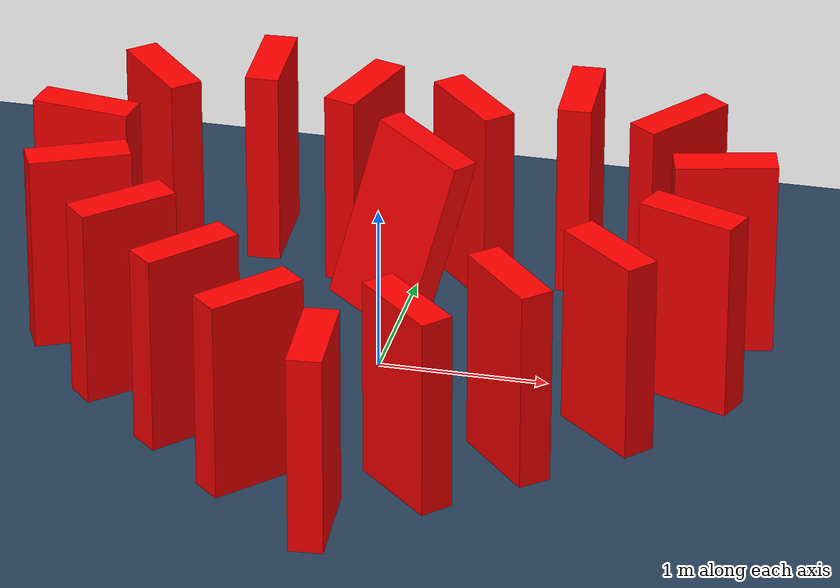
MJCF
<mujoco>
  <visual>
    <headlight diffuse="0.6 0.6 0.6" ambient="0.1 0.1 0.1" specular="0 0 0"/>
    <rgba haze="0.15 0.25 0.35 1"/>
    <global azimuth="120" elevation="-20"/>
  </visual>
  <asset>
    <texture type="skybox" builtin="gradient" rgb1="0.3 0.5 0.7" rgb2="0 0 0" width="512" height="3072"/>
    <texture type="2d" name="groundplane" builtin="checker" mark="edge" rgb1="0.2 0.3 0.4" rgb2="0.1 0.2 0.3" markrgb="0.8 0.8 0.8" width="300" height="300"/>
    <material name="groundplane" texture="groundplane" texuniform="true" texrepeat="5 5" reflectance="0.2"/>
  </asset>
  <worldbody>
    <light pos="0 0 1.5" dir="0 0 -1" directional="true"/>
    <geom name="floor" size="0 0 0.05" type="plane" material="groundplane"/>
    <body pos="0.0000 0.6000 0.6000" euler="0 15.0 62.2">
      <geom type="box" size="0.1000 0.3000 0.6000" rgba="1.000 0.000 0.000 1"/>
      <freejoint/>
    </body>
    <body pos="0.3028 1.1752 0.6000" euler="0 0.0 42.7">
      <geom type="box" size="0.1000 0.3000 0.6000" rgba="1.000 0.000 0.000 1"/>
      <freejoint/>
    </body>
    <body pos="0.9008 1.4299 0.6000" euler="0 0.0 2.9">
      <geom type="box" size="0.1000 0.3000 0.6000" rgba="1.000 0.000 0.000 1"/>
      <freejoint/>
    </body>
    <body pos="1.5217 1.2375 0.6000" euler="0 0.0 -36.3">
      <geom type="box" size="0.1000 0.3000 0.6000" rgba="1.000 0.000 0.000 1"/>
      <freejoint/>
    </body>
    <body pos="1.8917 0.7030 0.6000" euler="0 0.0 -75.7">
      <geom type="box" size="0.1000 0.3000 0.6000" rgba="1.000 0.000 0.000 1"/>
      <freejoint/>
    </body>
    <body pos="1.8230 0.0566 0.6000" euler="0 0.0 -110.9">
      <geom type="box" size="0.1000 0.3000 0.6000" rgba="1.000 0.000 0.000 1"/>
      <freejoint/>
    </body>
    <body pos="1.4429 -0.4707 0.6000" euler="0 0.0 -131.7">
      <geom type="box" size="0.1000 0.3000 0.6000" rgba="1.000 0.000 0.000 1"/>
      <freejoint/>
    </body>
    <body pos="0.9627 -0.9088 0.6000" euler="0 0.0 -138.1">
      <geom type="box" size="0.1000 0.3000 0.6000" rgba="1.000 0.000 0.000 1"/>
      <freejoint/>
    </body>
    <body pos="0.4756 -1.3393 0.6000" euler="0 0.0 -133.7">
      <geom type="box" size="0.1000 0.3000 0.6000" rgba="1.000 0.000 0.000 1"/>
      <freejoint/>
    </body>
    <body pos="0.0669 -1.8448 0.6000" euler="0 0.0 -175.8">
      <geom type="box" size="0.1000 0.3000 0.6000" rgba="1.000 0.000 0.000 1"/>
      <freejoint/>
    </body>
    <body pos="-0.4104 -1.4036 0.6000" euler="0 0.0 137.6">
      <geom type="box" size="0.1000 0.3000 0.6000" rgba="1.000 0.000 0.000 1"/>
      <freejoint/>
    </body>
    <body pos="-0.8930 -0.9682 0.6000" euler="0 0.0 138.1">
      <geom type="box" size="0.1000 0.3000 0.6000" rgba="1.000 0.000 0.000 1"/>
      <freejoint/>
    </body>
    <body pos="-1.3784 -0.5357 0.6000" euler="0 0.0 133.3">
      <geom type="box" size="0.1000 0.3000 0.6000" rgba="1.000 0.000 0.000 1"/>
      <freejoint/>
    </body>
    <body pos="-1.7819 -0.0261 0.6000" euler="0 0.0 114.9">
      <geom type="box" size="0.1000 0.3000 0.6000" rgba="1.000 0.000 0.000 1"/>
      <freejoint/>
    </body>
    <body pos="-1.9103 0.6111 0.6000" euler="0 0.0 81.2">
      <geom type="box" size="0.1000 0.3000 0.6000" rgba="1.000 0.000 0.000 1"/>
      <freejoint/>
    </body>
    <body pos="-1.5943 1.1792 0.6000" euler="0 0.0 41.8">
      <geom type="box" size="0.1000 0.3000 0.6000" rgba="1.000 0.000 0.000 1"/>
      <freejoint/>
    </body>
    <body pos="-0.9943 1.4292 0.6000" euler="0 0.0 2.7">
      <geom type="box" size="0.1000 0.3000 0.6000" rgba="1.000 0.000 0.000 1"/>
      <freejoint/>
    </body>
    <body pos="-0.3738 1.2357 0.6000" euler="0 0.0 -17.3">
      <geom type="box" size="0.1000 0.3000 0.6000" rgba="1.000 0.001 0.000 1"/>
      <freejoint/>
    </body>
  </worldbody>
</mujoco>
